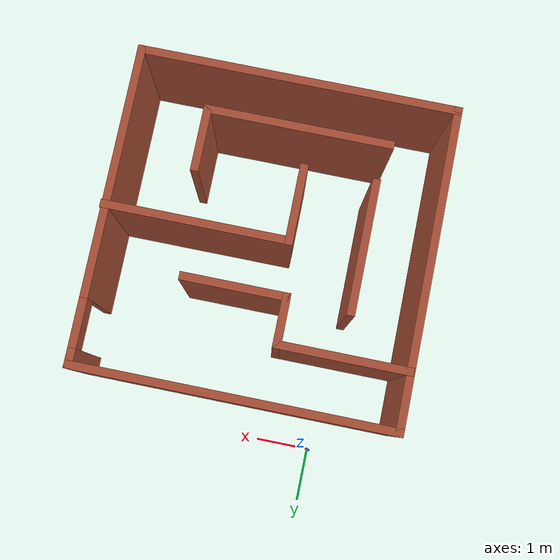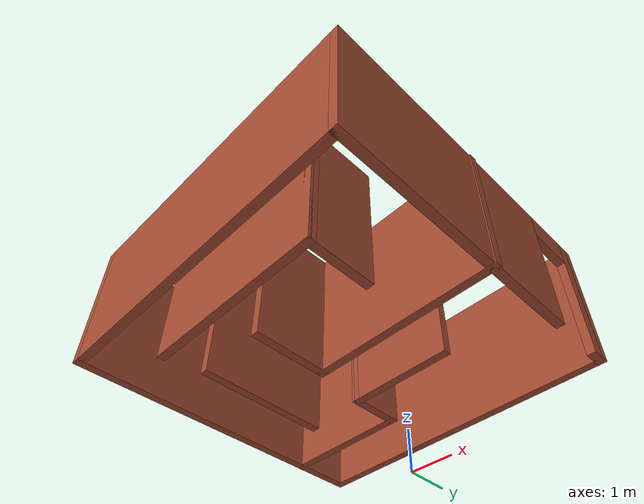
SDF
<?xml version='1.0'?>
<sdf version='1.6'>
  <model name='maze'>
    <pose frame=''>1.54507 -3.56594 0 0 -0 0</pose>
    <link name='Wall_10'>
      <collision name='Wall_10_Collision'>
        <geometry>
          <box>
            <size>6 0.15 2.5</size>
          </box>
        </geometry>
        <pose frame=''>0 0 1.25 0 -0 0</pose>
      </collision>
      <visual name='Wall_10_Visual'>
        <pose frame=''>0 0 1.25 0 -0 0</pose>
        <geometry>
          <box>
            <size>6 0.15 2.5</size>
          </box>
        </geometry>
        <material>
          <script>
            <uri>file://media/materials/scripts/gazebo.material</uri>
            <name>Gazebo/Bricks</name>
          </script>
          <ambient>1 1 1 1</ambient>
        </material>
        <meta>
          <layer>0</layer>
        </meta>
      </visual>
      <pose frame=''>-0.011581 2.925 0 0 -0 3.14159</pose>
    </link>
    <link name='Wall_12'>
      <collision name='Wall_12_Collision'>
        <geometry>
          <box>
            <size>2.5 0.15 2.5</size>
          </box>
        </geometry>
        <pose frame=''>0 0 1.25 0 -0 0</pose>
      </collision>
      <visual name='Wall_12_Visual'>
        <pose frame=''>0 0 1.25 0 -0 0</pose>
        <geometry>
          <box>
            <size>2.5 0.15 2.5</size>
          </box>
        </geometry>
        <material>
          <script>
            <uri>file://media/materials/scripts/gazebo.material</uri>
            <name>Gazebo/Bricks</name>
          </script>
          <ambient>1 1 1 1</ambient>
        </material>
        <meta>
          <layer>0</layer>
        </meta>
      </visual>
      <pose frame=''>-1.74147 1.85898 0 0 -0 0</pose>
    </link>
    <link name='Wall_13'>
      <collision name='Wall_13_Collision'>
        <geometry>
          <box>
            <size>1 0.15 2.5</size>
          </box>
        </geometry>
        <pose frame=''>0 0 1.25 0 -0 0</pose>
      </collision>
      <visual name='Wall_13_Visual'>
        <pose frame=''>0 0 1.25 0 -0 0</pose>
        <geometry>
          <box>
            <size>1 0.15 2.5</size>
          </box>
        </geometry>
        <material>
          <script>
            <uri>file://media/materials/scripts/gazebo.material</uri>
            <name>Gazebo/Bricks</name>
          </script>
          <ambient>1 1 1 1</ambient>
        </material>
        <meta>
          <layer>0</layer>
        </meta>
      </visual>
      <pose frame=''>-0.566468 1.43398 0 0 0 -1.5708</pose>
    </link>
    <link name='Wall_14'>
      <collision name='Wall_14_Collision'>
        <geometry>
          <box>
            <size>2 0.15 2.5</size>
          </box>
        </geometry>
        <pose frame=''>0 0 1.25 0 -0 0</pose>
      </collision>
      <visual name='Wall_14_Visual'>
        <pose frame=''>0 0 1.25 0 -0 0</pose>
        <geometry>
          <box>
            <size>2 0.15 2.5</size>
          </box>
        </geometry>
        <material>
          <script>
            <uri>file://media/materials/scripts/gazebo.material</uri>
            <name>Gazebo/Bricks</name>
          </script>
          <ambient>1 1 1 1</ambient>
        </material>
        <meta>
          <layer>0</layer>
        </meta>
      </visual>
      <pose frame=''>0.358532 1.00898 0 0 -0 0</pose>
    </link>
    <link name='Wall_16'>
      <collision name='Wall_16_Collision'>
        <geometry>
          <box>
            <size>3.5 0.15 2.5</size>
          </box>
        </geometry>
        <pose frame=''>0 0 1.25 0 -0 0</pose>
      </collision>
      <visual name='Wall_16_Visual'>
        <pose frame=''>0 0 1.25 0 -0 0</pose>
        <geometry>
          <box>
            <size>3.5 0.15 2.5</size>
          </box>
        </geometry>
        <material>
          <script>
            <uri>file://media/materials/scripts/gazebo.material</uri>
            <name>Gazebo/Bricks</name>
          </script>
          <ambient>1 1 1 1</ambient>
        </material>
        <meta>
          <layer>0</layer>
        </meta>
      </visual>
      <pose frame=''>1.26158 0.017169 0 0 -0 3.14159</pose>
    </link>
    <link name='Wall_17'>
      <collision name='Wall_17_Collision'>
        <geometry>
          <box>
            <size>1.5 0.15 2.5</size>
          </box>
        </geometry>
        <pose frame=''>0 0 1.25 0 -0 0</pose>
      </collision>
      <visual name='Wall_17_Visual'>
        <pose frame=''>0 0 1.25 0 -0 0</pose>
        <geometry>
          <box>
            <size>1.5 0.15 2.5</size>
          </box>
        </geometry>
        <material>
          <script>
            <uri>file://media/materials/scripts/gazebo.material</uri>
            <name>Gazebo/Bricks</name>
          </script>
          <ambient>1 1 1 1</ambient>
        </material>
        <meta>
          <layer>0</layer>
        </meta>
      </visual>
      <pose frame=''>-0.413418 -0.657831 0 0 0 -1.5708</pose>
    </link>
    <link name='Wall_19'>
      <collision name='Wall_19_Collision'>
        <geometry>
          <box>
            <size>2.5 0.15 2.5</size>
          </box>
        </geometry>
        <pose frame=''>0 0 1.25 0 -0 0</pose>
      </collision>
      <visual name='Wall_19_Visual'>
        <pose frame=''>0 0 1.25 0 -0 0</pose>
        <geometry>
          <box>
            <size>2.5 0.15 2.5</size>
          </box>
        </geometry>
        <material>
          <script>
            <uri>file://media/materials/scripts/gazebo.material</uri>
            <name>Gazebo/Bricks</name>
          </script>
          <ambient>1 1 1 1</ambient>
        </material>
        <meta>
          <layer>0</layer>
        </meta>
      </visual>
      <pose frame=''>-1.72977 -0.140676 0 0 0 -1.5708</pose>
    </link>
    <link name='Wall_21'>
      <collision name='Wall_21_Collision'>
        <geometry>
          <box>
            <size>3.5 0.15 2.5</size>
          </box>
        </geometry>
        <pose frame=''>0 0 1.25 0 -0 0</pose>
      </collision>
      <visual name='Wall_21_Visual'>
        <pose frame=''>0 0 1.25 0 -0 0</pose>
        <geometry>
          <box>
            <size>3.5 0.15 2.5</size>
          </box>
        </geometry>
        <material>
          <script>
            <uri>file://media/materials/scripts/gazebo.material</uri>
            <name>Gazebo/Bricks</name>
          </script>
          <ambient>1 1 1 1</ambient>
        </material>
        <meta>
          <layer>0</layer>
        </meta>
      </visual>
      <pose frame=''>-0.175448 -2.06317 0 0 -0 0</pose>
    </link>
    <link name='Wall_22'>
      <collision name='Wall_22_Collision'>
        <geometry>
          <box>
            <size>1.25 0.15 2.5</size>
          </box>
        </geometry>
        <pose frame=''>0 0 1.25 0 -0 0</pose>
      </collision>
      <visual name='Wall_22_Visual'>
        <pose frame=''>0 0 1.25 0 -0 0</pose>
        <geometry>
          <box>
            <size>1.25 0.15 2.5</size>
          </box>
        </geometry>
        <material>
          <script>
            <uri>file://media/materials/scripts/gazebo.material</uri>
            <name>Gazebo/Bricks</name>
          </script>
          <ambient>1 1 1 1</ambient>
        </material>
        <meta>
          <layer>0</layer>
        </meta>
      </visual>
      <pose frame=''>1.49955 -1.51317 0 0 -0 1.5708</pose>
    </link>
    <link name='Wall_7'>
      <collision name='Wall_7_Collision'>
        <geometry>
          <box>
            <size>6 0.15 2.5</size>
          </box>
        </geometry>
        <pose frame=''>0 0 1.25 0 -0 0</pose>
      </collision>
      <visual name='Wall_7_Visual'>
        <pose frame=''>0 0 1.25 0 -0 0</pose>
        <geometry>
          <box>
            <size>6 0.15 2.5</size>
          </box>
        </geometry>
        <material>
          <script>
            <uri>file://media/materials/scripts/gazebo.material</uri>
            <name>Gazebo/Bricks</name>
          </script>
          <ambient>1 1 1 1</ambient>
        </material>
        <meta>
          <layer>0</layer>
        </meta>
      </visual>
      <pose frame=''>-2.93658 0 0 0 0 -1.5708</pose>
    </link>
    <link name='Wall_8'>
      <collision name='Wall_8_Collision'>
        <geometry>
          <box>
            <size>6 0.15 2.5</size>
          </box>
        </geometry>
        <pose frame=''>0 0 1.25 0 -0 0</pose>
      </collision>
      <visual name='Wall_8_Visual'>
        <pose frame=''>0 0 1.25 0 -0 0</pose>
        <geometry>
          <box>
            <size>6 0.15 2.5</size>
          </box>
        </geometry>
        <material>
          <script>
            <uri>file://media/materials/scripts/gazebo.material</uri>
            <name>Gazebo/Bricks</name>
          </script>
          <ambient>1 1 1 1</ambient>
        </material>
        <meta>
          <layer>0</layer>
        </meta>
      </visual>
      <pose frame=''>-0.011581 -2.925 0 0 -0 0</pose>
    </link>
    <link name='Wall_9'>
      <pose frame=''>2.91342 0 0 0 -0 1.5708</pose>
      <visual name='Wall_9_Visual_0'>
        <pose frame=''>-0.634601 0 1.25 0 -0 0</pose>
        <geometry>
          <box>
            <size>4.7308 0.15 2.5</size>
          </box>
        </geometry>
        <material>
          <script>
            <uri>file://media/materials/scripts/gazebo.material</uri>
            <name>Gazebo/Bricks</name>
          </script>
          <ambient>1 1 1 1</ambient>
        </material>
        <meta>
          <layer>0</layer>
        </meta>
      </visual>
      <collision name='Wall_9_Collision_0'>
        <geometry>
          <box>
            <size>4.7308 0.15 2.5</size>
          </box>
        </geometry>
        <pose frame=''>-0.634601 0 1.25 0 -0 0</pose>
      </collision>
      <visual name='Wall_9_Visual_1'>
        <pose frame=''>2.8154 0 1.25 0 -0 0</pose>
        <geometry>
          <box>
            <size>0.369202 0.15 2.5</size>
          </box>
        </geometry>
        <material>
          <script>
            <uri>file://media/materials/scripts/gazebo.material</uri>
            <name>Gazebo/Bricks</name>
          </script>
          <ambient>1 1 1 1</ambient>
        </material>
        <meta>
          <layer>0</layer>
        </meta>
      </visual>
      <collision name='Wall_9_Collision_1'>
        <geometry>
          <box>
            <size>0.369202 0.15 2.5</size>
          </box>
        </geometry>
        <pose frame=''>2.8154 0 1.25 0 -0 0</pose>
      </collision>
      <visual name='Wall_9_Visual_2'>
        <pose frame=''>2.1808 0 2.25 0 -0 0</pose>
        <geometry>
          <box>
            <size>0.9 0.15 0.5</size>
          </box>
        </geometry>
        <material>
          <script>
            <uri>file://media/materials/scripts/gazebo.material</uri>
            <name>Gazebo/Bricks</name>
          </script>
          <ambient>1 1 1 1</ambient>
        </material>
        <meta>
          <layer>0</layer>
        </meta>
      </visual>
      <collision name='Wall_9_Collision_2'>
        <geometry>
          <box>
            <size>0.9 0.15 0.5</size>
          </box>
        </geometry>
        <pose frame=''>2.1808 0 2.25 0 -0 0</pose>
      </collision>
    </link>
    <static>1</static>
  </model>
</sdf>
